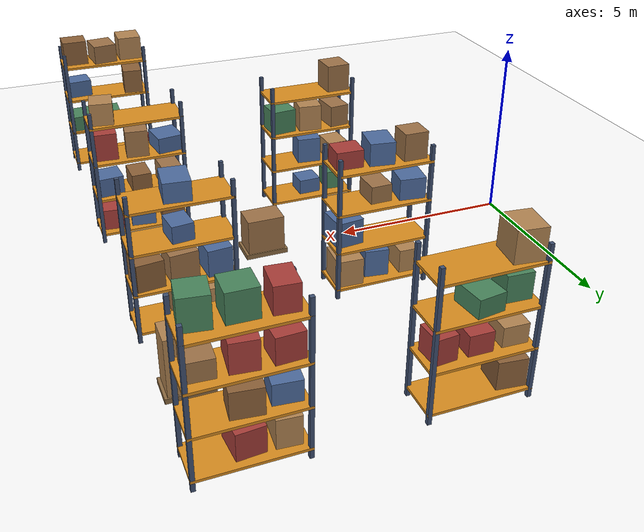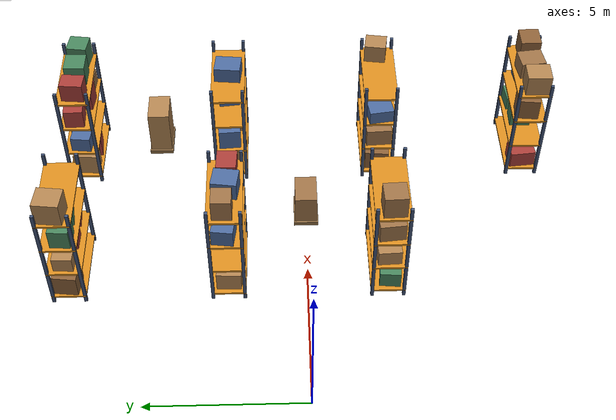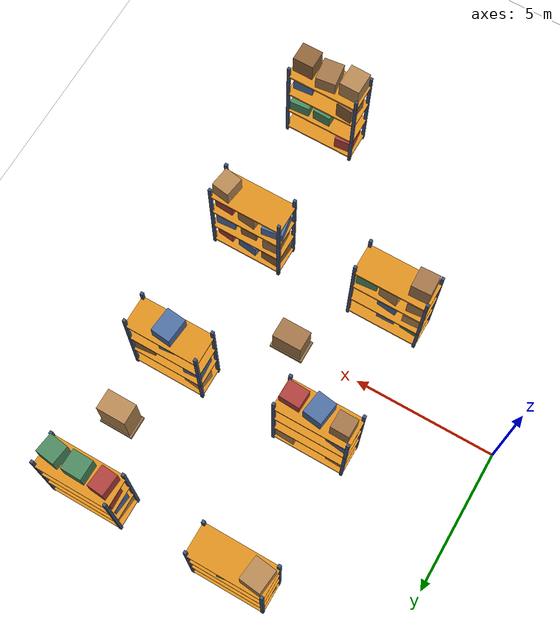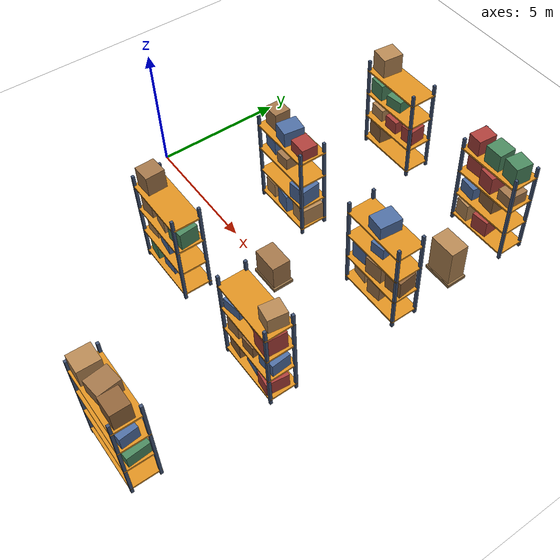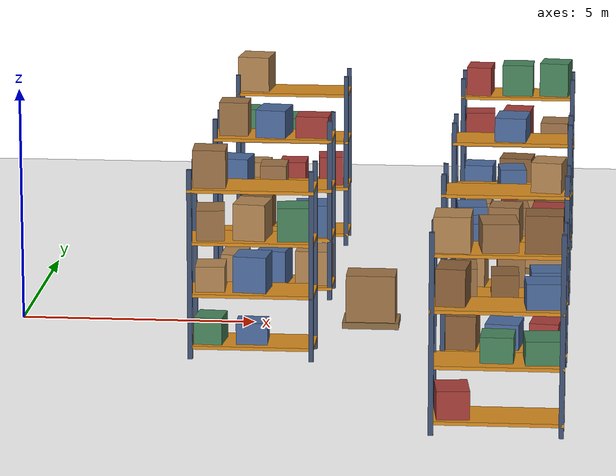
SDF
<sdf version="1.9">
 <world name="warehouse">
  <model name="ground_plane">
   <static>true</static>
   <link name="link">
    <collision name="collision">
     <geometry><plane><normal>0 0 1</normal><size>200 200</size></plane></geometry>
     <surface><friction><ode><mu>1.0</mu><mu2>1.0</mu2></ode></friction></surface>
    </collision>
    <visual name="visual">
     <geometry><plane><normal>0 0 1</normal><size>200 200</size></plane></geometry>
     <material>
      <ambient>0.5 0.5 0.5 1</ambient>
      <diffuse>1 1 1 1</diffuse>
      <pbr>
       <metal>
        <albedo_map>model://surfaces/materials/textures/floor.png</albedo_map>
        <metalness>0</metalness>
        <roughness>0.9</roughness>
       </metal>
      </pbr>
     </material>
    </visual>
   </link>
  </model>
  <model name="rack_0_4">
   <static>true</static>
   <pose>10.4 -7.5 0 0 0 0</pose>
   <link name="link">
    <visual name="upright_0_v">
     <pose>-1.25 -0.5 2 0 0 0</pose>
     <geometry><box><size>0.1 0.1 4</size></box></geometry>
     <material><ambient>0.125 0.16 0.225 1</ambient><diffuse>0.25 0.32 0.45 1</diffuse></material>
    </visual>
    <collision name="upright_0_c">
     <pose>-1.25 -0.5 2 0 0 0</pose>
     <geometry><box><size>0.1 0.1 4</size></box></geometry>
    </collision>
    <visual name="upright_1_v">
     <pose>-1.25 0.5 2 0 0 0</pose>
     <geometry><box><size>0.1 0.1 4</size></box></geometry>
     <material><ambient>0.125 0.16 0.225 1</ambient><diffuse>0.25 0.32 0.45 1</diffuse></material>
    </visual>
    <collision name="upright_1_c">
     <pose>-1.25 0.5 2 0 0 0</pose>
     <geometry><box><size>0.1 0.1 4</size></box></geometry>
    </collision>
    <visual name="upright_2_v">
     <pose>1.25 -0.5 2 0 0 0</pose>
     <geometry><box><size>0.1 0.1 4</size></box></geometry>
     <material><ambient>0.125 0.16 0.225 1</ambient><diffuse>0.25 0.32 0.45 1</diffuse></material>
    </visual>
    <collision name="upright_2_c">
     <pose>1.25 -0.5 2 0 0 0</pose>
     <geometry><box><size>0.1 0.1 4</size></box></geometry>
    </collision>
    <visual name="upright_3_v">
     <pose>1.25 0.5 2 0 0 0</pose>
     <geometry><box><size>0.1 0.1 4</size></box></geometry>
     <material><ambient>0.125 0.16 0.225 1</ambient><diffuse>0.25 0.32 0.45 1</diffuse></material>
    </visual>
    <collision name="upright_3_c">
     <pose>1.25 0.5 2 0 0 0</pose>
     <geometry><box><size>0.1 0.1 4</size></box></geometry>
    </collision>
    <visual name="deck_0_v">
     <pose>0 0 0.25 0 0 0</pose>
     <geometry><box><size>2.6 1.1 0.07</size></box></geometry>
     <material><ambient>0.425 0.275 0.06 1</ambient><diffuse>0.85 0.55 0.12 1</diffuse></material>
    </visual>
    <collision name="deck_0_c">
     <pose>0 0 0.25 0 0 0</pose>
     <geometry><box><size>2.6 1.1 0.07</size></box></geometry>
    </collision>
    <visual name="cargo_0_0_v">
     <pose>-0.8667 -0.003469 0.5691 0 0 0.1021</pose>
     <geometry><box><size>0.644 0.8463 0.5682</size></box></geometry>
     <material><ambient>0.33 0.12 0.11 1</ambient><diffuse>0.66 0.24 0.22 1</diffuse></material>
    </visual>
    <collision name="cargo_0_0_c">
     <pose>-0.8667 -0.003469 0.5691 0 0 0.1021</pose>
     <geometry><box><size>0.644 0.8463 0.5682</size></box></geometry>
    </collision>
    <visual name="deck_1_v">
     <pose>0 0 1.35 0 0 0</pose>
     <geometry><box><size>2.6 1.1 0.07</size></box></geometry>
     <material><ambient>0.425 0.275 0.06 1</ambient><diffuse>0.85 0.55 0.12 1</diffuse></material>
    </visual>
    <collision name="deck_1_c">
     <pose>0 0 1.35 0 0 0</pose>
     <geometry><box><size>2.6 1.1 0.07</size></box></geometry>
    </collision>
    <visual name="cargo_1_2_v">
     <pose>0.8667 0.03212 1.625 0 0 0.07504</pose>
     <geometry><box><size>0.7099 0.8274 0.4797</size></box></geometry>
     <material><ambient>0.14 0.26 0.18 1</ambient><diffuse>0.28 0.52 0.36 1</diffuse></material>
    </visual>
    <collision name="cargo_1_2_c">
     <pose>0.8667 0.03212 1.625 0 0 0.07504</pose>
     <geometry><box><size>0.7099 0.8274 0.4797</size></box></geometry>
    </collision>
    <visual name="cargo_1_1_v">
     <pose>0 0.05783 1.641 0 0 -0.03125</pose>
     <geometry><box><size>0.6456 0.6831 0.5125</size></box></geometry>
     <material><ambient>0.14 0.26 0.18 1</ambient><diffuse>0.28 0.52 0.36 1</diffuse></material>
    </visual>
    <collision name="cargo_1_1_c">
     <pose>0 0.05783 1.641 0 0 -0.03125</pose>
     <geometry><box><size>0.6456 0.6831 0.5125</size></box></geometry>
    </collision>
    <visual name="deck_2_v">
     <pose>0 0 2.45 0 0 0</pose>
     <geometry><box><size>2.6 1.1 0.07</size></box></geometry>
     <material><ambient>0.425 0.275 0.06 1</ambient><diffuse>0.85 0.55 0.12 1</diffuse></material>
    </visual>
    <collision name="deck_2_c">
     <pose>0 0 2.45 0 0 0</pose>
     <geometry><box><size>2.6 1.1 0.07</size></box></geometry>
    </collision>
    <visual name="cargo_2_2_v">
     <pose>0.8667 -0.07459 2.74 0 0 0.09195</pose>
     <geometry><box><size>0.695 0.6378 0.5095</size></box></geometry>
     <material><ambient>0.15 0.21 0.31 1</ambient><diffuse>0.3 0.42 0.62 1</diffuse></material>
    </visual>
    <collision name="cargo_2_2_c">
     <pose>0.8667 -0.07459 2.74 0 0 0.09195</pose>
     <geometry><box><size>0.695 0.6378 0.5095</size></box></geometry>
    </collision>
    <visual name="cargo_2_0_v">
     <pose>-0.8667 0.09606 2.855 0 0 -0.1032</pose>
     <geometry><box><size>0.5792 0.7643 0.7393</size></box></geometry>
     <material><ambient>0.275 0.19 0.11 1</ambient><diffuse>0.55 0.38 0.22 1</diffuse></material>
    </visual>
    <collision name="cargo_2_0_c">
     <pose>-0.8667 0.09606 2.855 0 0 -0.1032</pose>
     <geometry><box><size>0.5792 0.7643 0.7393</size></box></geometry>
    </collision>
    <visual name="deck_3_v">
     <pose>0 0 3.55 0 0 0</pose>
     <geometry><box><size>2.6 1.1 0.07</size></box></geometry>
     <material><ambient>0.425 0.275 0.06 1</ambient><diffuse>0.85 0.55 0.12 1</diffuse></material>
    </visual>
    <collision name="deck_3_c">
     <pose>0 0 3.55 0 0 0</pose>
     <geometry><box><size>2.6 1.1 0.07</size></box></geometry>
    </collision>
    <visual name="cargo_3_0_v">
     <pose>-0.8667 -0.07945 3.937 0 0 -0.01986</pose>
     <geometry><box><size>0.7099 0.7874 0.7042</size></box></geometry>
     <material><ambient>0.35 0.26 0.16 1</ambient><diffuse>0.7 0.52 0.32 1</diffuse></material>
    </visual>
    <collision name="cargo_3_0_c">
     <pose>-0.8667 -0.07945 3.937 0 0 -0.01986</pose>
     <geometry><box><size>0.7099 0.7874 0.7042</size></box></geometry>
    </collision>
    <visual name="cargo_3_2_v">
     <pose>0.8667 -0.05779 3.955 0 0 0.0003486</pose>
     <geometry><box><size>0.7243 0.663 0.7392</size></box></geometry>
     <material><ambient>0.275 0.19 0.11 1</ambient><diffuse>0.55 0.38 0.22 1</diffuse></material>
    </visual>
    <collision name="cargo_3_2_c">
     <pose>0.8667 -0.05779 3.955 0 0 0.0003486</pose>
     <geometry><box><size>0.7243 0.663 0.7392</size></box></geometry>
    </collision>
    <visual name="cargo_3_1_v">
     <pose>0 0.008871 3.867 0 0 0.123</pose>
     <geometry><box><size>0.7027 0.8085 0.5641</size></box></geometry>
     <material><ambient>0.31 0.225 0.14 1</ambient><diffuse>0.62 0.45 0.28 1</diffuse></material>
    </visual>
    <collision name="cargo_3_1_c">
     <pose>0 0.008871 3.867 0 0 0.123</pose>
     <geometry><box><size>0.7027 0.8085 0.5641</size></box></geometry>
    </collision>
   </link>
  </model>
  <model name="rack_1_3">
   <static>true</static>
   <pose>5.2 -2.5 0 0 0 0</pose>
   <link name="link">
    <visual name="upright_0_v">
     <pose>-1.25 -0.5 2 0 0 0</pose>
     <geometry><box><size>0.1 0.1 4</size></box></geometry>
     <material><ambient>0.125 0.16 0.225 1</ambient><diffuse>0.25 0.32 0.45 1</diffuse></material>
    </visual>
    <collision name="upright_0_c">
     <pose>-1.25 -0.5 2 0 0 0</pose>
     <geometry><box><size>0.1 0.1 4</size></box></geometry>
    </collision>
    <visual name="upright_1_v">
     <pose>-1.25 0.5 2 0 0 0</pose>
     <geometry><box><size>0.1 0.1 4</size></box></geometry>
     <material><ambient>0.125 0.16 0.225 1</ambient><diffuse>0.25 0.32 0.45 1</diffuse></material>
    </visual>
    <collision name="upright_1_c">
     <pose>-1.25 0.5 2 0 0 0</pose>
     <geometry><box><size>0.1 0.1 4</size></box></geometry>
    </collision>
    <visual name="upright_2_v">
     <pose>1.25 -0.5 2 0 0 0</pose>
     <geometry><box><size>0.1 0.1 4</size></box></geometry>
     <material><ambient>0.125 0.16 0.225 1</ambient><diffuse>0.25 0.32 0.45 1</diffuse></material>
    </visual>
    <collision name="upright_2_c">
     <pose>1.25 -0.5 2 0 0 0</pose>
     <geometry><box><size>0.1 0.1 4</size></box></geometry>
    </collision>
    <visual name="upright_3_v">
     <pose>1.25 0.5 2 0 0 0</pose>
     <geometry><box><size>0.1 0.1 4</size></box></geometry>
     <material><ambient>0.125 0.16 0.225 1</ambient><diffuse>0.25 0.32 0.45 1</diffuse></material>
    </visual>
    <collision name="upright_3_c">
     <pose>1.25 0.5 2 0 0 0</pose>
     <geometry><box><size>0.1 0.1 4</size></box></geometry>
    </collision>
    <visual name="deck_0_v">
     <pose>0 0 0.25 0 0 0</pose>
     <geometry><box><size>2.6 1.1 0.07</size></box></geometry>
     <material><ambient>0.425 0.275 0.06 1</ambient><diffuse>0.85 0.55 0.12 1</diffuse></material>
    </visual>
    <collision name="deck_0_c">
     <pose>0 0 0.25 0 0 0</pose>
     <geometry><box><size>2.6 1.1 0.07</size></box></geometry>
    </collision>
    <visual name="cargo_0_0_v">
     <pose>-0.8667 -0.08322 0.5687 0 0 -0.08971</pose>
     <geometry><box><size>0.5866 0.6697 0.5674</size></box></geometry>
     <material><ambient>0.14 0.26 0.18 1</ambient><diffuse>0.28 0.52 0.36 1</diffuse></material>
    </visual>
    <collision name="cargo_0_0_c">
     <pose>-0.8667 -0.08322 0.5687 0 0 -0.08971</pose>
     <geometry><box><size>0.5866 0.6697 0.5674</size></box></geometry>
    </collision>
    <visual name="cargo_0_1_v">
     <pose>0 -0.04717 0.5109 0 0 0.02604</pose>
     <geometry><box><size>0.6509 0.6224 0.4517</size></box></geometry>
     <material><ambient>0.15 0.21 0.31 1</ambient><diffuse>0.3 0.42 0.62 1</diffuse></material>
    </visual>
    <collision name="cargo_0_1_c">
     <pose>0 -0.04717 0.5109 0 0 0.02604</pose>
     <geometry><box><size>0.6509 0.6224 0.4517</size></box></geometry>
    </collision>
    <visual name="deck_1_v">
     <pose>0 0 1.35 0 0 0</pose>
     <geometry><box><size>2.6 1.1 0.07</size></box></geometry>
     <material><ambient>0.425 0.275 0.06 1</ambient><diffuse>0.85 0.55 0.12 1</diffuse></material>
    </visual>
    <collision name="deck_1_c">
     <pose>0 0 1.35 0 0 0</pose>
     <geometry><box><size>2.6 1.1 0.07</size></box></geometry>
    </collision>
    <visual name="cargo_1_0_v">
     <pose>-0.8667 0.01712 1.651 0 0 0.04726</pose>
     <geometry><box><size>0.6108 0.7323 0.5315</size></box></geometry>
     <material><ambient>0.35 0.26 0.16 1</ambient><diffuse>0.7 0.52 0.32 1</diffuse></material>
    </visual>
    <collision name="cargo_1_0_c">
     <pose>-0.8667 0.01712 1.651 0 0 0.04726</pose>
     <geometry><box><size>0.6108 0.7323 0.5315</size></box></geometry>
    </collision>
    <visual name="cargo_1_1_v">
     <pose>0 -0.0221 1.764 0 0 -0.1052</pose>
     <geometry><box><size>0.6932 0.6815 0.7577</size></box></geometry>
     <material><ambient>0.15 0.21 0.31 1</ambient><diffuse>0.3 0.42 0.62 1</diffuse></material>
    </visual>
    <collision name="cargo_1_1_c">
     <pose>0 -0.0221 1.764 0 0 -0.1052</pose>
     <geometry><box><size>0.6932 0.6815 0.7577</size></box></geometry>
    </collision>
    <visual name="deck_2_v">
     <pose>0 0 2.45 0 0 0</pose>
     <geometry><box><size>2.6 1.1 0.07</size></box></geometry>
     <material><ambient>0.425 0.275 0.06 1</ambient><diffuse>0.85 0.55 0.12 1</diffuse></material>
    </visual>
    <collision name="deck_2_c">
     <pose>0 0 2.45 0 0 0</pose>
     <geometry><box><size>2.6 1.1 0.07</size></box></geometry>
    </collision>
    <visual name="cargo_2_2_v">
     <pose>0.8667 0.002596 2.835 0 0 0.09367</pose>
     <geometry><box><size>0.715 0.7073 0.7003</size></box></geometry>
     <material><ambient>0.14 0.26 0.18 1</ambient><diffuse>0.28 0.52 0.36 1</diffuse></material>
    </visual>
    <collision name="cargo_2_2_c">
     <pose>0.8667 0.002596 2.835 0 0 0.09367</pose>
     <geometry><box><size>0.715 0.7073 0.7003</size></box></geometry>
    </collision>
    <visual name="cargo_2_0_v">
     <pose>-0.8667 0.0008742 2.802 0 0 0.09792</pose>
     <geometry><box><size>0.5779 0.8087 0.6333</size></box></geometry>
     <material><ambient>0.31 0.225 0.14 1</ambient><diffuse>0.62 0.45 0.28 1</diffuse></material>
    </visual>
    <collision name="cargo_2_0_c">
     <pose>-0.8667 0.0008742 2.802 0 0 0.09792</pose>
     <geometry><box><size>0.5779 0.8087 0.6333</size></box></geometry>
    </collision>
    <visual name="cargo_2_1_v">
     <pose>0 0.03658 2.866 0 0 -0.1245</pose>
     <geometry><box><size>0.6668 0.7733 0.7625</size></box></geometry>
     <material><ambient>0.35 0.26 0.16 1</ambient><diffuse>0.7 0.52 0.32 1</diffuse></material>
    </visual>
    <collision name="cargo_2_1_c">
     <pose>0 0.03658 2.866 0 0 -0.1245</pose>
     <geometry><box><size>0.6668 0.7733 0.7625</size></box></geometry>
    </collision>
    <visual name="deck_3_v">
     <pose>0 0 3.55 0 0 0</pose>
     <geometry><box><size>2.6 1.1 0.07</size></box></geometry>
     <material><ambient>0.425 0.275 0.06 1</ambient><diffuse>0.85 0.55 0.12 1</diffuse></material>
    </visual>
    <collision name="deck_3_c">
     <pose>0 0 3.55 0 0 0</pose>
     <geometry><box><size>2.6 1.1 0.07</size></box></geometry>
    </collision>
    <visual name="cargo_3_0_v">
     <pose>-0.8667 -0.02468 3.978 0 0 0.03833</pose>
     <geometry><box><size>0.6774 0.7128 0.7858</size></box></geometry>
     <material><ambient>0.31 0.225 0.14 1</ambient><diffuse>0.62 0.45 0.28 1</diffuse></material>
    </visual>
    <collision name="cargo_3_0_c">
     <pose>-0.8667 -0.02468 3.978 0 0 0.03833</pose>
     <geometry><box><size>0.6774 0.7128 0.7858</size></box></geometry>
    </collision>
   </link>
  </model>
  <model name="rack_1_4">
   <static>true</static>
   <pose>10.4 -2.5 0 0 0 0</pose>
   <link name="link">
    <visual name="upright_0_v">
     <pose>-1.25 -0.5 2 0 0 0</pose>
     <geometry><box><size>0.1 0.1 4</size></box></geometry>
     <material><ambient>0.125 0.16 0.225 1</ambient><diffuse>0.25 0.32 0.45 1</diffuse></material>
    </visual>
    <collision name="upright_0_c">
     <pose>-1.25 -0.5 2 0 0 0</pose>
     <geometry><box><size>0.1 0.1 4</size></box></geometry>
    </collision>
    <visual name="upright_1_v">
     <pose>-1.25 0.5 2 0 0 0</pose>
     <geometry><box><size>0.1 0.1 4</size></box></geometry>
     <material><ambient>0.125 0.16 0.225 1</ambient><diffuse>0.25 0.32 0.45 1</diffuse></material>
    </visual>
    <collision name="upright_1_c">
     <pose>-1.25 0.5 2 0 0 0</pose>
     <geometry><box><size>0.1 0.1 4</size></box></geometry>
    </collision>
    <visual name="upright_2_v">
     <pose>1.25 -0.5 2 0 0 0</pose>
     <geometry><box><size>0.1 0.1 4</size></box></geometry>
     <material><ambient>0.125 0.16 0.225 1</ambient><diffuse>0.25 0.32 0.45 1</diffuse></material>
    </visual>
    <collision name="upright_2_c">
     <pose>1.25 -0.5 2 0 0 0</pose>
     <geometry><box><size>0.1 0.1 4</size></box></geometry>
    </collision>
    <visual name="upright_3_v">
     <pose>1.25 0.5 2 0 0 0</pose>
     <geometry><box><size>0.1 0.1 4</size></box></geometry>
     <material><ambient>0.125 0.16 0.225 1</ambient><diffuse>0.25 0.32 0.45 1</diffuse></material>
    </visual>
    <collision name="upright_3_c">
     <pose>1.25 0.5 2 0 0 0</pose>
     <geometry><box><size>0.1 0.1 4</size></box></geometry>
    </collision>
    <visual name="deck_0_v">
     <pose>0 0 0.25 0 0 0</pose>
     <geometry><box><size>2.6 1.1 0.07</size></box></geometry>
     <material><ambient>0.425 0.275 0.06 1</ambient><diffuse>0.85 0.55 0.12 1</diffuse></material>
    </visual>
    <collision name="deck_0_c">
     <pose>0 0 0.25 0 0 0</pose>
     <geometry><box><size>2.6 1.1 0.07</size></box></geometry>
    </collision>
    <visual name="cargo_0_2_v">
     <pose>0.8667 -0.08598 0.59 0 0 -0.1224</pose>
     <geometry><box><size>0.6028 0.8331 0.6099</size></box></geometry>
     <material><ambient>0.33 0.12 0.11 1</ambient><diffuse>0.66 0.24 0.22 1</diffuse></material>
    </visual>
    <collision name="cargo_0_2_c">
     <pose>0.8667 -0.08598 0.59 0 0 -0.1224</pose>
     <geometry><box><size>0.6028 0.8331 0.6099</size></box></geometry>
    </collision>
    <visual name="cargo_0_0_v">
     <pose>-0.8667 -0.005228 0.6405 0 0 -0.07956</pose>
     <geometry><box><size>0.6552 0.8023 0.711</size></box></geometry>
     <material><ambient>0.275 0.19 0.11 1</ambient><diffuse>0.55 0.38 0.22 1</diffuse></material>
    </visual>
    <collision name="cargo_0_0_c">
     <pose>-0.8667 -0.005228 0.6405 0 0 -0.07956</pose>
     <geometry><box><size>0.6552 0.8023 0.711</size></box></geometry>
    </collision>
    <visual name="cargo_0_1_v">
     <pose>0 0.02999 0.5504 0 0 -0.127</pose>
     <geometry><box><size>0.7013 0.7151 0.5308</size></box></geometry>
     <material><ambient>0.15 0.21 0.31 1</ambient><diffuse>0.3 0.42 0.62 1</diffuse></material>
    </visual>
    <collision name="cargo_0_1_c">
     <pose>0 0.02999 0.5504 0 0 -0.127</pose>
     <geometry><box><size>0.7013 0.7151 0.5308</size></box></geometry>
    </collision>
    <visual name="deck_1_v">
     <pose>0 0 1.35 0 0 0</pose>
     <geometry><box><size>2.6 1.1 0.07</size></box></geometry>
     <material><ambient>0.425 0.275 0.06 1</ambient><diffuse>0.85 0.55 0.12 1</diffuse></material>
    </visual>
    <collision name="deck_1_c">
     <pose>0 0 1.35 0 0 0</pose>
     <geometry><box><size>2.6 1.1 0.07</size></box></geometry>
    </collision>
    <visual name="cargo_1_1_v">
     <pose>0 -0.04921 1.636 0 0 0.03635</pose>
     <geometry><box><size>0.5655 0.7858 0.5016</size></box></geometry>
     <material><ambient>0.275 0.19 0.11 1</ambient><diffuse>0.55 0.38 0.22 1</diffuse></material>
    </visual>
    <collision name="cargo_1_1_c">
     <pose>0 -0.04921 1.636 0 0 0.03635</pose>
     <geometry><box><size>0.5655 0.7858 0.5016</size></box></geometry>
    </collision>
    <visual name="cargo_1_0_v">
     <pose>-0.8667 -0.00284 1.694 0 0 0.05766</pose>
     <geometry><box><size>0.5767 0.8431 0.6188</size></box></geometry>
     <material><ambient>0.31 0.225 0.14 1</ambient><diffuse>0.62 0.45 0.28 1</diffuse></material>
    </visual>
    <collision name="cargo_1_0_c">
     <pose>-0.8667 -0.00284 1.694 0 0 0.05766</pose>
     <geometry><box><size>0.5767 0.8431 0.6188</size></box></geometry>
    </collision>
    <visual name="cargo_1_2_v">
     <pose>0.8667 0.003307 1.661 0 0 0.08015</pose>
     <geometry><box><size>0.6851 0.7162 0.5518</size></box></geometry>
     <material><ambient>0.15 0.21 0.31 1</ambient><diffuse>0.3 0.42 0.62 1</diffuse></material>
    </visual>
    <collision name="cargo_1_2_c">
     <pose>0.8667 0.003307 1.661 0 0 0.08015</pose>
     <geometry><box><size>0.6851 0.7162 0.5518</size></box></geometry>
    </collision>
    <visual name="deck_2_v">
     <pose>0 0 2.45 0 0 0</pose>
     <geometry><box><size>2.6 1.1 0.07</size></box></geometry>
     <material><ambient>0.425 0.275 0.06 1</ambient><diffuse>0.85 0.55 0.12 1</diffuse></material>
    </visual>
    <collision name="deck_2_c">
     <pose>0 0 2.45 0 0 0</pose>
     <geometry><box><size>2.6 1.1 0.07</size></box></geometry>
    </collision>
    <visual name="cargo_2_0_v">
     <pose>-0.8667 -0.008206 2.713 0 0 0.1482</pose>
     <geometry><box><size>0.7373 0.805 0.4561</size></box></geometry>
     <material><ambient>0.15 0.21 0.31 1</ambient><diffuse>0.3 0.42 0.62 1</diffuse></material>
    </visual>
    <collision name="cargo_2_0_c">
     <pose>-0.8667 -0.008206 2.713 0 0 0.1482</pose>
     <geometry><box><size>0.7373 0.805 0.4561</size></box></geometry>
    </collision>
    <visual name="cargo_2_1_v">
     <pose>0 0.08611 2.87 0 0 -0.1075</pose>
     <geometry><box><size>0.6274 0.6187 0.7708</size></box></geometry>
     <material><ambient>0.31 0.225 0.14 1</ambient><diffuse>0.62 0.45 0.28 1</diffuse></material>
    </visual>
    <collision name="cargo_2_1_c">
     <pose>0 0.08611 2.87 0 0 -0.1075</pose>
     <geometry><box><size>0.6274 0.6187 0.7708</size></box></geometry>
    </collision>
    <visual name="cargo_2_2_v">
     <pose>0.8667 -0.07348 2.877 0 0 -0.06613</pose>
     <geometry><box><size>0.6548 0.8051 0.7835</size></box></geometry>
     <material><ambient>0.33 0.12 0.11 1</ambient><diffuse>0.66 0.24 0.22 1</diffuse></material>
    </visual>
    <collision name="cargo_2_2_c">
     <pose>0.8667 -0.07348 2.877 0 0 -0.06613</pose>
     <geometry><box><size>0.6548 0.8051 0.7835</size></box></geometry>
    </collision>
    <visual name="deck_3_v">
     <pose>0 0 3.55 0 0 0</pose>
     <geometry><box><size>2.6 1.1 0.07</size></box></geometry>
     <material><ambient>0.425 0.275 0.06 1</ambient><diffuse>0.85 0.55 0.12 1</diffuse></material>
    </visual>
    <collision name="deck_3_c">
     <pose>0 0 3.55 0 0 0</pose>
     <geometry><box><size>2.6 1.1 0.07</size></box></geometry>
    </collision>
    <visual name="cargo_3_2_v">
     <pose>0.8667 0.07523 3.897 0 0 -0.1489</pose>
     <geometry><box><size>0.623 0.6985 0.6243</size></box></geometry>
     <material><ambient>0.35 0.26 0.16 1</ambient><diffuse>0.7 0.52 0.32 1</diffuse></material>
    </visual>
    <collision name="cargo_3_2_c">
     <pose>0.8667 0.07523 3.897 0 0 -0.1489</pose>
     <geometry><box><size>0.623 0.6985 0.6243</size></box></geometry>
    </collision>
   </link>
  </model>
  <model name="rack_2_3">
   <static>true</static>
   <pose>5.2 2.5 0 0 0 0</pose>
   <link name="link">
    <visual name="upright_0_v">
     <pose>-1.25 -0.5 2 0 0 0</pose>
     <geometry><box><size>0.1 0.1 4</size></box></geometry>
     <material><ambient>0.125 0.16 0.225 1</ambient><diffuse>0.25 0.32 0.45 1</diffuse></material>
    </visual>
    <collision name="upright_0_c">
     <pose>-1.25 -0.5 2 0 0 0</pose>
     <geometry><box><size>0.1 0.1 4</size></box></geometry>
    </collision>
    <visual name="upright_1_v">
     <pose>-1.25 0.5 2 0 0 0</pose>
     <geometry><box><size>0.1 0.1 4</size></box></geometry>
     <material><ambient>0.125 0.16 0.225 1</ambient><diffuse>0.25 0.32 0.45 1</diffuse></material>
    </visual>
    <collision name="upright_1_c">
     <pose>-1.25 0.5 2 0 0 0</pose>
     <geometry><box><size>0.1 0.1 4</size></box></geometry>
    </collision>
    <visual name="upright_2_v">
     <pose>1.25 -0.5 2 0 0 0</pose>
     <geometry><box><size>0.1 0.1 4</size></box></geometry>
     <material><ambient>0.125 0.16 0.225 1</ambient><diffuse>0.25 0.32 0.45 1</diffuse></material>
    </visual>
    <collision name="upright_2_c">
     <pose>1.25 -0.5 2 0 0 0</pose>
     <geometry><box><size>0.1 0.1 4</size></box></geometry>
    </collision>
    <visual name="upright_3_v">
     <pose>1.25 0.5 2 0 0 0</pose>
     <geometry><box><size>0.1 0.1 4</size></box></geometry>
     <material><ambient>0.125 0.16 0.225 1</ambient><diffuse>0.25 0.32 0.45 1</diffuse></material>
    </visual>
    <collision name="upright_3_c">
     <pose>1.25 0.5 2 0 0 0</pose>
     <geometry><box><size>0.1 0.1 4</size></box></geometry>
    </collision>
    <visual name="deck_0_v">
     <pose>0 0 0.25 0 0 0</pose>
     <geometry><box><size>2.6 1.1 0.07</size></box></geometry>
     <material><ambient>0.425 0.275 0.06 1</ambient><diffuse>0.85 0.55 0.12 1</diffuse></material>
    </visual>
    <collision name="deck_0_c">
     <pose>0 0 0.25 0 0 0</pose>
     <geometry><box><size>2.6 1.1 0.07</size></box></geometry>
    </collision>
    <visual name="cargo_0_1_v">
     <pose>0 -0.08872 0.6693 0 0 -0.1337</pose>
     <geometry><box><size>0.647 0.7487 0.7686</size></box></geometry>
     <material><ambient>0.15 0.21 0.31 1</ambient><diffuse>0.3 0.42 0.62 1</diffuse></material>
    </visual>
    <collision name="cargo_0_1_c">
     <pose>0 -0.08872 0.6693 0 0 -0.1337</pose>
     <geometry><box><size>0.647 0.7487 0.7686</size></box></geometry>
    </collision>
    <visual name="cargo_0_0_v">
     <pose>-0.8667 -0.01692 0.6143 0 0 -0.032</pose>
     <geometry><box><size>0.5547 0.7775 0.6586</size></box></geometry>
     <material><ambient>0.35 0.26 0.16 1</ambient><diffuse>0.7 0.52 0.32 1</diffuse></material>
    </visual>
    <collision name="cargo_0_0_c">
     <pose>-0.8667 -0.01692 0.6143 0 0 -0.032</pose>
     <geometry><box><size>0.5547 0.7775 0.6586</size></box></geometry>
    </collision>
    <visual name="cargo_0_2_v">
     <pose>0.8667 0.04654 0.6646 0 0 -0.05123</pose>
     <geometry><box><size>0.7296 0.8494 0.7593</size></box></geometry>
     <material><ambient>0.35 0.26 0.16 1</ambient><diffuse>0.7 0.52 0.32 1</diffuse></material>
    </visual>
    <collision name="cargo_0_2_c">
     <pose>0.8667 0.04654 0.6646 0 0 -0.05123</pose>
     <geometry><box><size>0.7296 0.8494 0.7593</size></box></geometry>
    </collision>
    <visual name="deck_1_v">
     <pose>0 0 1.35 0 0 0</pose>
     <geometry><box><size>2.6 1.1 0.07</size></box></geometry>
     <material><ambient>0.425 0.275 0.06 1</ambient><diffuse>0.85 0.55 0.12 1</diffuse></material>
    </visual>
    <collision name="deck_1_c">
     <pose>0 0 1.35 0 0 0</pose>
     <geometry><box><size>2.6 1.1 0.07</size></box></geometry>
    </collision>
    <visual name="cargo_1_2_v">
     <pose>0.8667 -0.09362 1.741 0 0 0.1017</pose>
     <geometry><box><size>0.7372 0.7661 0.7112</size></box></geometry>
     <material><ambient>0.15 0.21 0.31 1</ambient><diffuse>0.3 0.42 0.62 1</diffuse></material>
    </visual>
    <collision name="cargo_1_2_c">
     <pose>0.8667 -0.09362 1.741 0 0 0.1017</pose>
     <geometry><box><size>0.7372 0.7661 0.7112</size></box></geometry>
    </collision>
    <visual name="deck_2_v">
     <pose>0 0 2.45 0 0 0</pose>
     <geometry><box><size>2.6 1.1 0.07</size></box></geometry>
     <material><ambient>0.425 0.275 0.06 1</ambient><diffuse>0.85 0.55 0.12 1</diffuse></material>
    </visual>
    <collision name="deck_2_c">
     <pose>0 0 2.45 0 0 0</pose>
     <geometry><box><size>2.6 1.1 0.07</size></box></geometry>
    </collision>
    <visual name="cargo_2_1_v">
     <pose>0 -0.08385 2.724 0 0 0.01834</pose>
     <geometry><box><size>0.5718 0.705 0.4774</size></box></geometry>
     <material><ambient>0.31 0.225 0.14 1</ambient><diffuse>0.62 0.45 0.28 1</diffuse></material>
    </visual>
    <collision name="cargo_2_1_c">
     <pose>0 -0.08385 2.724 0 0 0.01834</pose>
     <geometry><box><size>0.5718 0.705 0.4774</size></box></geometry>
    </collision>
    <visual name="cargo_2_0_v">
     <pose>-0.8667 0.05375 2.777 0 0 -0.1237</pose>
     <geometry><box><size>0.7018 0.6772 0.583</size></box></geometry>
     <material><ambient>0.15 0.21 0.31 1</ambient><diffuse>0.3 0.42 0.62 1</diffuse></material>
    </visual>
    <collision name="cargo_2_0_c">
     <pose>-0.8667 0.05375 2.777 0 0 -0.1237</pose>
     <geometry><box><size>0.7018 0.6772 0.583</size></box></geometry>
    </collision>
    <visual name="deck_3_v">
     <pose>0 0 3.55 0 0 0</pose>
     <geometry><box><size>2.6 1.1 0.07</size></box></geometry>
     <material><ambient>0.425 0.275 0.06 1</ambient><diffuse>0.85 0.55 0.12 1</diffuse></material>
    </visual>
    <collision name="deck_3_c">
     <pose>0 0 3.55 0 0 0</pose>
     <geometry><box><size>2.6 1.1 0.07</size></box></geometry>
    </collision>
    <visual name="cargo_3_1_v">
     <pose>0 -0.03534 3.888 0 0 -0.1409</pose>
     <geometry><box><size>0.6583 0.7843 0.6062</size></box></geometry>
     <material><ambient>0.15 0.21 0.31 1</ambient><diffuse>0.3 0.42 0.62 1</diffuse></material>
    </visual>
    <collision name="cargo_3_1_c">
     <pose>0 -0.03534 3.888 0 0 -0.1409</pose>
     <geometry><box><size>0.6583 0.7843 0.6062</size></box></geometry>
    </collision>
    <visual name="cargo_3_0_v">
     <pose>-0.8667 0.05333 3.952 0 0 -0.01078</pose>
     <geometry><box><size>0.6322 0.6102 0.7341</size></box></geometry>
     <material><ambient>0.31 0.225 0.14 1</ambient><diffuse>0.62 0.45 0.28 1</diffuse></material>
    </visual>
    <collision name="cargo_3_0_c">
     <pose>-0.8667 0.05333 3.952 0 0 -0.01078</pose>
     <geometry><box><size>0.6322 0.6102 0.7341</size></box></geometry>
    </collision>
    <visual name="cargo_3_2_v">
     <pose>0.8667 -0.06101 3.821 0 0 -0.04828</pose>
     <geometry><box><size>0.7107 0.6157 0.4717</size></box></geometry>
     <material><ambient>0.33 0.12 0.11 1</ambient><diffuse>0.66 0.24 0.22 1</diffuse></material>
    </visual>
    <collision name="cargo_3_2_c">
     <pose>0.8667 -0.06101 3.821 0 0 -0.04828</pose>
     <geometry><box><size>0.7107 0.6157 0.4717</size></box></geometry>
    </collision>
   </link>
  </model>
  <model name="rack_2_4">
   <static>true</static>
   <pose>10.4 2.5 0 0 0 0</pose>
   <link name="link">
    <visual name="upright_0_v">
     <pose>-1.25 -0.5 2 0 0 0</pose>
     <geometry><box><size>0.1 0.1 4</size></box></geometry>
     <material><ambient>0.125 0.16 0.225 1</ambient><diffuse>0.25 0.32 0.45 1</diffuse></material>
    </visual>
    <collision name="upright_0_c">
     <pose>-1.25 -0.5 2 0 0 0</pose>
     <geometry><box><size>0.1 0.1 4</size></box></geometry>
    </collision>
    <visual name="upright_1_v">
     <pose>-1.25 0.5 2 0 0 0</pose>
     <geometry><box><size>0.1 0.1 4</size></box></geometry>
     <material><ambient>0.125 0.16 0.225 1</ambient><diffuse>0.25 0.32 0.45 1</diffuse></material>
    </visual>
    <collision name="upright_1_c">
     <pose>-1.25 0.5 2 0 0 0</pose>
     <geometry><box><size>0.1 0.1 4</size></box></geometry>
    </collision>
    <visual name="upright_2_v">
     <pose>1.25 -0.5 2 0 0 0</pose>
     <geometry><box><size>0.1 0.1 4</size></box></geometry>
     <material><ambient>0.125 0.16 0.225 1</ambient><diffuse>0.25 0.32 0.45 1</diffuse></material>
    </visual>
    <collision name="upright_2_c">
     <pose>1.25 -0.5 2 0 0 0</pose>
     <geometry><box><size>0.1 0.1 4</size></box></geometry>
    </collision>
    <visual name="upright_3_v">
     <pose>1.25 0.5 2 0 0 0</pose>
     <geometry><box><size>0.1 0.1 4</size></box></geometry>
     <material><ambient>0.125 0.16 0.225 1</ambient><diffuse>0.25 0.32 0.45 1</diffuse></material>
    </visual>
    <collision name="upright_3_c">
     <pose>1.25 0.5 2 0 0 0</pose>
     <geometry><box><size>0.1 0.1 4</size></box></geometry>
    </collision>
    <visual name="deck_0_v">
     <pose>0 0 0.25 0 0 0</pose>
     <geometry><box><size>2.6 1.1 0.07</size></box></geometry>
     <material><ambient>0.425 0.275 0.06 1</ambient><diffuse>0.85 0.55 0.12 1</diffuse></material>
    </visual>
    <collision name="deck_0_c">
     <pose>0 0 0.25 0 0 0</pose>
     <geometry><box><size>2.6 1.1 0.07</size></box></geometry>
    </collision>
    <visual name="cargo_0_1_v">
     <pose>0 -0.0367 0.6354 0 0 0.06647</pose>
     <geometry><box><size>0.6024 0.6689 0.7008</size></box></geometry>
     <material><ambient>0.31 0.225 0.14 1</ambient><diffuse>0.62 0.45 0.28 1</diffuse></material>
    </visual>
    <collision name="cargo_0_1_c">
     <pose>0 -0.0367 0.6354 0 0 0.06647</pose>
     <geometry><box><size>0.6024 0.6689 0.7008</size></box></geometry>
    </collision>
    <visual name="cargo_0_0_v">
     <pose>-0.8667 0.0893 0.651 0 0 -0.1178</pose>
     <geometry><box><size>0.6691 0.6163 0.732</size></box></geometry>
     <material><ambient>0.35 0.26 0.16 1</ambient><diffuse>0.7 0.52 0.32 1</diffuse></material>
    </visual>
    <collision name="cargo_0_0_c">
     <pose>-0.8667 0.0893 0.651 0 0 -0.1178</pose>
     <geometry><box><size>0.6691 0.6163 0.732</size></box></geometry>
    </collision>
    <visual name="deck_1_v">
     <pose>0 0 1.35 0 0 0</pose>
     <geometry><box><size>2.6 1.1 0.07</size></box></geometry>
     <material><ambient>0.425 0.275 0.06 1</ambient><diffuse>0.85 0.55 0.12 1</diffuse></material>
    </visual>
    <collision name="deck_1_c">
     <pose>0 0 1.35 0 0 0</pose>
     <geometry><box><size>2.6 1.1 0.07</size></box></geometry>
    </collision>
    <visual name="cargo_1_1_v">
     <pose>0 -0.07346 1.753 0 0 0.09077</pose>
     <geometry><box><size>0.7327 0.7241 0.7352</size></box></geometry>
     <material><ambient>0.31 0.225 0.14 1</ambient><diffuse>0.62 0.45 0.28 1</diffuse></material>
    </visual>
    <collision name="cargo_1_1_c">
     <pose>0 -0.07346 1.753 0 0 0.09077</pose>
     <geometry><box><size>0.7327 0.7241 0.7352</size></box></geometry>
    </collision>
    <visual name="cargo_1_2_v">
     <pose>0.8667 0.05456 1.754 0 0 0.1084</pose>
     <geometry><box><size>0.6977 0.7518 0.738</size></box></geometry>
     <material><ambient>0.275 0.19 0.11 1</ambient><diffuse>0.55 0.38 0.22 1</diffuse></material>
    </visual>
    <collision name="cargo_1_2_c">
     <pose>0.8667 0.05456 1.754 0 0 0.1084</pose>
     <geometry><box><size>0.6977 0.7518 0.738</size></box></geometry>
    </collision>
    <visual name="cargo_1_0_v">
     <pose>-0.8667 0.01914 1.747 0 0 0.07587</pose>
     <geometry><box><size>0.6422 0.728 0.7243</size></box></geometry>
     <material><ambient>0.15 0.21 0.31 1</ambient><diffuse>0.3 0.42 0.62 1</diffuse></material>
    </visual>
    <collision name="cargo_1_0_c">
     <pose>-0.8667 0.01914 1.747 0 0 0.07587</pose>
     <geometry><box><size>0.6422 0.728 0.7243</size></box></geometry>
    </collision>
    <visual name="deck_2_v">
     <pose>0 0 2.45 0 0 0</pose>
     <geometry><box><size>2.6 1.1 0.07</size></box></geometry>
     <material><ambient>0.425 0.275 0.06 1</ambient><diffuse>0.85 0.55 0.12 1</diffuse></material>
    </visual>
    <collision name="deck_2_c">
     <pose>0 0 2.45 0 0 0</pose>
     <geometry><box><size>2.6 1.1 0.07</size></box></geometry>
    </collision>
    <visual name="cargo_2_1_v">
     <pose>0 0.01052 2.716 0 0 0.115</pose>
     <geometry><box><size>0.5629 0.6814 0.4619</size></box></geometry>
     <material><ambient>0.15 0.21 0.31 1</ambient><diffuse>0.3 0.42 0.62 1</diffuse></material>
    </visual>
    <collision name="cargo_2_1_c">
     <pose>0 0.01052 2.716 0 0 0.115</pose>
     <geometry><box><size>0.5629 0.6814 0.4619</size></box></geometry>
    </collision>
    <visual name="deck_3_v">
     <pose>0 0 3.55 0 0 0</pose>
     <geometry><box><size>2.6 1.1 0.07</size></box></geometry>
     <material><ambient>0.425 0.275 0.06 1</ambient><diffuse>0.85 0.55 0.12 1</diffuse></material>
    </visual>
    <collision name="deck_3_c">
     <pose>0 0 3.55 0 0 0</pose>
     <geometry><box><size>2.6 1.1 0.07</size></box></geometry>
    </collision>
    <visual name="cargo_3_1_v">
     <pose>0 -0.01579 3.846 0 0 -0.09804</pose>
     <geometry><box><size>0.6749 0.8471 0.5229</size></box></geometry>
     <material><ambient>0.15 0.21 0.31 1</ambient><diffuse>0.3 0.42 0.62 1</diffuse></material>
    </visual>
    <collision name="cargo_3_1_c">
     <pose>0 -0.01579 3.846 0 0 -0.09804</pose>
     <geometry><box><size>0.6749 0.8471 0.5229</size></box></geometry>
    </collision>
   </link>
  </model>
  <model name="rack_3_3">
   <static>true</static>
   <pose>5.2 7.5 0 0 0 0</pose>
   <link name="link">
    <visual name="upright_0_v">
     <pose>-1.25 -0.5 2 0 0 0</pose>
     <geometry><box><size>0.1 0.1 4</size></box></geometry>
     <material><ambient>0.125 0.16 0.225 1</ambient><diffuse>0.25 0.32 0.45 1</diffuse></material>
    </visual>
    <collision name="upright_0_c">
     <pose>-1.25 -0.5 2 0 0 0</pose>
     <geometry><box><size>0.1 0.1 4</size></box></geometry>
    </collision>
    <visual name="upright_1_v">
     <pose>-1.25 0.5 2 0 0 0</pose>
     <geometry><box><size>0.1 0.1 4</size></box></geometry>
     <material><ambient>0.125 0.16 0.225 1</ambient><diffuse>0.25 0.32 0.45 1</diffuse></material>
    </visual>
    <collision name="upright_1_c">
     <pose>-1.25 0.5 2 0 0 0</pose>
     <geometry><box><size>0.1 0.1 4</size></box></geometry>
    </collision>
    <visual name="upright_2_v">
     <pose>1.25 -0.5 2 0 0 0</pose>
     <geometry><box><size>0.1 0.1 4</size></box></geometry>
     <material><ambient>0.125 0.16 0.225 1</ambient><diffuse>0.25 0.32 0.45 1</diffuse></material>
    </visual>
    <collision name="upright_2_c">
     <pose>1.25 -0.5 2 0 0 0</pose>
     <geometry><box><size>0.1 0.1 4</size></box></geometry>
    </collision>
    <visual name="upright_3_v">
     <pose>1.25 0.5 2 0 0 0</pose>
     <geometry><box><size>0.1 0.1 4</size></box></geometry>
     <material><ambient>0.125 0.16 0.225 1</ambient><diffuse>0.25 0.32 0.45 1</diffuse></material>
    </visual>
    <collision name="upright_3_c">
     <pose>1.25 0.5 2 0 0 0</pose>
     <geometry><box><size>0.1 0.1 4</size></box></geometry>
    </collision>
    <visual name="deck_0_v">
     <pose>0 0 0.25 0 0 0</pose>
     <geometry><box><size>2.6 1.1 0.07</size></box></geometry>
     <material><ambient>0.425 0.275 0.06 1</ambient><diffuse>0.85 0.55 0.12 1</diffuse></material>
    </visual>
    <collision name="deck_0_c">
     <pose>0 0 0.25 0 0 0</pose>
     <geometry><box><size>2.6 1.1 0.07</size></box></geometry>
    </collision>
    <visual name="cargo_0_0_v">
     <pose>-0.8667 0.03445 0.6574 0 0 -0.1147</pose>
     <geometry><box><size>0.7268 0.767 0.7449</size></box></geometry>
     <material><ambient>0.275 0.19 0.11 1</ambient><diffuse>0.55 0.38 0.22 1</diffuse></material>
    </visual>
    <collision name="cargo_0_0_c">
     <pose>-0.8667 0.03445 0.6574 0 0 -0.1147</pose>
     <geometry><box><size>0.7268 0.767 0.7449</size></box></geometry>
    </collision>
    <visual name="deck_1_v">
     <pose>0 0 1.35 0 0 0</pose>
     <geometry><box><size>2.6 1.1 0.07</size></box></geometry>
     <material><ambient>0.425 0.275 0.06 1</ambient><diffuse>0.85 0.55 0.12 1</diffuse></material>
    </visual>
    <collision name="deck_1_c">
     <pose>0 0 1.35 0 0 0</pose>
     <geometry><box><size>2.6 1.1 0.07</size></box></geometry>
    </collision>
    <visual name="cargo_1_1_v">
     <pose>0 -0.02216 1.654 0 0 -0.01849</pose>
     <geometry><box><size>0.6116 0.6919 0.5372</size></box></geometry>
     <material><ambient>0.33 0.12 0.11 1</ambient><diffuse>0.66 0.24 0.22 1</diffuse></material>
    </visual>
    <collision name="cargo_1_1_c">
     <pose>0 -0.02216 1.654 0 0 -0.01849</pose>
     <geometry><box><size>0.6116 0.6919 0.5372</size></box></geometry>
    </collision>
    <visual name="cargo_1_2_v">
     <pose>0.8667 -0.0021 1.718 0 0 0.08399</pose>
     <geometry><box><size>0.5547 0.6588 0.6666</size></box></geometry>
     <material><ambient>0.33 0.12 0.11 1</ambient><diffuse>0.66 0.24 0.22 1</diffuse></material>
    </visual>
    <collision name="cargo_1_2_c">
     <pose>0.8667 -0.0021 1.718 0 0 0.08399</pose>
     <geometry><box><size>0.5547 0.6588 0.6666</size></box></geometry>
    </collision>
    <visual name="cargo_1_0_v">
     <pose>-0.8667 -0.005356 1.641 0 0 -0.04243</pose>
     <geometry><box><size>0.6417 0.6268 0.5128</size></box></geometry>
     <material><ambient>0.35 0.26 0.16 1</ambient><diffuse>0.7 0.52 0.32 1</diffuse></material>
    </visual>
    <collision name="cargo_1_0_c">
     <pose>-0.8667 -0.005356 1.641 0 0 -0.04243</pose>
     <geometry><box><size>0.6417 0.6268 0.5128</size></box></geometry>
    </collision>
    <visual name="deck_2_v">
     <pose>0 0 2.45 0 0 0</pose>
     <geometry><box><size>2.6 1.1 0.07</size></box></geometry>
     <material><ambient>0.425 0.275 0.06 1</ambient><diffuse>0.85 0.55 0.12 1</diffuse></material>
    </visual>
    <collision name="deck_2_c">
     <pose>0 0 2.45 0 0 0</pose>
     <geometry><box><size>2.6 1.1 0.07</size></box></geometry>
    </collision>
    <visual name="cargo_2_0_v">
     <pose>-0.8667 -0.09187 2.825 0 0 -0.05588</pose>
     <geometry><box><size>0.6509 0.6326 0.68</size></box></geometry>
     <material><ambient>0.14 0.26 0.18 1</ambient><diffuse>0.28 0.52 0.36 1</diffuse></material>
    </visual>
    <collision name="cargo_2_0_c">
     <pose>-0.8667 -0.09187 2.825 0 0 -0.05588</pose>
     <geometry><box><size>0.6509 0.6326 0.68</size></box></geometry>
    </collision>
    <visual name="cargo_2_1_v">
     <pose>0 0.05041 2.724 0 0 0.1353</pose>
     <geometry><box><size>0.6941 0.8237 0.478</size></box></geometry>
     <material><ambient>0.14 0.26 0.18 1</ambient><diffuse>0.28 0.52 0.36 1</diffuse></material>
    </visual>
    <collision name="cargo_2_1_c">
     <pose>0 0.05041 2.724 0 0 0.1353</pose>
     <geometry><box><size>0.6941 0.8237 0.478</size></box></geometry>
    </collision>
    <visual name="deck_3_v">
     <pose>0 0 3.55 0 0 0</pose>
     <geometry><box><size>2.6 1.1 0.07</size></box></geometry>
     <material><ambient>0.425 0.275 0.06 1</ambient><diffuse>0.85 0.55 0.12 1</diffuse></material>
    </visual>
    <collision name="deck_3_c">
     <pose>0 0 3.55 0 0 0</pose>
     <geometry><box><size>2.6 1.1 0.07</size></box></geometry>
    </collision>
    <visual name="cargo_3_0_v">
     <pose>-0.8667 0.04642 3.984 0 0 -0.1105</pose>
     <geometry><box><size>0.7214 0.8037 0.7986</size></box></geometry>
     <material><ambient>0.35 0.26 0.16 1</ambient><diffuse>0.7 0.52 0.32 1</diffuse></material>
    </visual>
    <collision name="cargo_3_0_c">
     <pose>-0.8667 0.04642 3.984 0 0 -0.1105</pose>
     <geometry><box><size>0.7214 0.8037 0.7986</size></box></geometry>
    </collision>
   </link>
  </model>
  <model name="rack_3_4">
   <static>true</static>
   <pose>10.4 7.5 0 0 0 0</pose>
   <link name="link">
    <visual name="upright_0_v">
     <pose>-1.25 -0.5 2 0 0 0</pose>
     <geometry><box><size>0.1 0.1 4</size></box></geometry>
     <material><ambient>0.125 0.16 0.225 1</ambient><diffuse>0.25 0.32 0.45 1</diffuse></material>
    </visual>
    <collision name="upright_0_c">
     <pose>-1.25 -0.5 2 0 0 0</pose>
     <geometry><box><size>0.1 0.1 4</size></box></geometry>
    </collision>
    <visual name="upright_1_v">
     <pose>-1.25 0.5 2 0 0 0</pose>
     <geometry><box><size>0.1 0.1 4</size></box></geometry>
     <material><ambient>0.125 0.16 0.225 1</ambient><diffuse>0.25 0.32 0.45 1</diffuse></material>
    </visual>
    <collision name="upright_1_c">
     <pose>-1.25 0.5 2 0 0 0</pose>
     <geometry><box><size>0.1 0.1 4</size></box></geometry>
    </collision>
    <visual name="upright_2_v">
     <pose>1.25 -0.5 2 0 0 0</pose>
     <geometry><box><size>0.1 0.1 4</size></box></geometry>
     <material><ambient>0.125 0.16 0.225 1</ambient><diffuse>0.25 0.32 0.45 1</diffuse></material>
    </visual>
    <collision name="upright_2_c">
     <pose>1.25 -0.5 2 0 0 0</pose>
     <geometry><box><size>0.1 0.1 4</size></box></geometry>
    </collision>
    <visual name="upright_3_v">
     <pose>1.25 0.5 2 0 0 0</pose>
     <geometry><box><size>0.1 0.1 4</size></box></geometry>
     <material><ambient>0.125 0.16 0.225 1</ambient><diffuse>0.25 0.32 0.45 1</diffuse></material>
    </visual>
    <collision name="upright_3_c">
     <pose>1.25 0.5 2 0 0 0</pose>
     <geometry><box><size>0.1 0.1 4</size></box></geometry>
    </collision>
    <visual name="deck_0_v">
     <pose>0 0 0.25 0 0 0</pose>
     <geometry><box><size>2.6 1.1 0.07</size></box></geometry>
     <material><ambient>0.425 0.275 0.06 1</ambient><diffuse>0.85 0.55 0.12 1</diffuse></material>
    </visual>
    <collision name="deck_0_c">
     <pose>0 0 0.25 0 0 0</pose>
     <geometry><box><size>2.6 1.1 0.07</size></box></geometry>
    </collision>
    <visual name="cargo_0_1_v">
     <pose>0 -0.05577 0.6362 0 0 0.07685</pose>
     <geometry><box><size>0.6872 0.8083 0.7024</size></box></geometry>
     <material><ambient>0.33 0.12 0.11 1</ambient><diffuse>0.66 0.24 0.22 1</diffuse></material>
    </visual>
    <collision name="cargo_0_1_c">
     <pose>0 -0.05577 0.6362 0 0 0.07685</pose>
     <geometry><box><size>0.6872 0.8083 0.7024</size></box></geometry>
    </collision>
    <visual name="cargo_0_0_v">
     <pose>-0.8667 -0.045 0.6669 0 0 -0.07375</pose>
     <geometry><box><size>0.5818 0.8039 0.7638</size></box></geometry>
     <material><ambient>0.35 0.26 0.16 1</ambient><diffuse>0.7 0.52 0.32 1</diffuse></material>
    </visual>
    <collision name="cargo_0_0_c">
     <pose>-0.8667 -0.045 0.6669 0 0 -0.07375</pose>
     <geometry><box><size>0.5818 0.8039 0.7638</size></box></geometry>
    </collision>
    <visual name="deck_1_v">
     <pose>0 0 1.35 0 0 0</pose>
     <geometry><box><size>2.6 1.1 0.07</size></box></geometry>
     <material><ambient>0.425 0.275 0.06 1</ambient><diffuse>0.85 0.55 0.12 1</diffuse></material>
    </visual>
    <collision name="deck_1_c">
     <pose>0 0 1.35 0 0 0</pose>
     <geometry><box><size>2.6 1.1 0.07</size></box></geometry>
    </collision>
    <visual name="cargo_1_0_v">
     <pose>-0.8667 -0.02555 1.652 0 0 -0.1016</pose>
     <geometry><box><size>0.6732 0.6497 0.5331</size></box></geometry>
     <material><ambient>0.15 0.21 0.31 1</ambient><diffuse>0.3 0.42 0.62 1</diffuse></material>
    </visual>
    <collision name="cargo_1_0_c">
     <pose>-0.8667 -0.02555 1.652 0 0 -0.1016</pose>
     <geometry><box><size>0.6732 0.6497 0.5331</size></box></geometry>
    </collision>
    <visual name="cargo_1_1_v">
     <pose>0 0.07908 1.729 0 0 -0.1155</pose>
     <geometry><box><size>0.7373 0.6422 0.6879</size></box></geometry>
     <material><ambient>0.275 0.19 0.11 1</ambient><diffuse>0.55 0.38 0.22 1</diffuse></material>
    </visual>
    <collision name="cargo_1_1_c">
     <pose>0 0.07908 1.729 0 0 -0.1155</pose>
     <geometry><box><size>0.7373 0.6422 0.6879</size></box></geometry>
    </collision>
    <visual name="deck_2_v">
     <pose>0 0 2.45 0 0 0</pose>
     <geometry><box><size>2.6 1.1 0.07</size></box></geometry>
     <material><ambient>0.425 0.275 0.06 1</ambient><diffuse>0.85 0.55 0.12 1</diffuse></material>
    </visual>
    <collision name="deck_2_c">
     <pose>0 0 2.45 0 0 0</pose>
     <geometry><box><size>2.6 1.1 0.07</size></box></geometry>
    </collision>
    <visual name="cargo_2_0_v">
     <pose>-0.8667 0.07651 2.812 0 0 0.03893</pose>
     <geometry><box><size>0.661 0.6262 0.653</size></box></geometry>
     <material><ambient>0.33 0.12 0.11 1</ambient><diffuse>0.66 0.24 0.22 1</diffuse></material>
    </visual>
    <collision name="cargo_2_0_c">
     <pose>-0.8667 0.07651 2.812 0 0 0.03893</pose>
     <geometry><box><size>0.661 0.6262 0.653</size></box></geometry>
    </collision>
    <visual name="cargo_2_1_v">
     <pose>0 -0.04705 2.85 0 0 -0.1061</pose>
     <geometry><box><size>0.6289 0.8476 0.7292</size></box></geometry>
     <material><ambient>0.33 0.12 0.11 1</ambient><diffuse>0.66 0.24 0.22 1</diffuse></material>
    </visual>
    <collision name="cargo_2_1_c">
     <pose>0 -0.04705 2.85 0 0 -0.1061</pose>
     <geometry><box><size>0.6289 0.8476 0.7292</size></box></geometry>
    </collision>
    <visual name="cargo_2_2_v">
     <pose>0.8667 -0.05399 2.724 0 0 -0.06108</pose>
     <geometry><box><size>0.6162 0.7538 0.4785</size></box></geometry>
     <material><ambient>0.31 0.225 0.14 1</ambient><diffuse>0.62 0.45 0.28 1</diffuse></material>
    </visual>
    <collision name="cargo_2_2_c">
     <pose>0.8667 -0.05399 2.724 0 0 -0.06108</pose>
     <geometry><box><size>0.6162 0.7538 0.4785</size></box></geometry>
    </collision>
    <visual name="deck_3_v">
     <pose>0 0 3.55 0 0 0</pose>
     <geometry><box><size>2.6 1.1 0.07</size></box></geometry>
     <material><ambient>0.425 0.275 0.06 1</ambient><diffuse>0.85 0.55 0.12 1</diffuse></material>
    </visual>
    <collision name="deck_3_c">
     <pose>0 0 3.55 0 0 0</pose>
     <geometry><box><size>2.6 1.1 0.07</size></box></geometry>
    </collision>
    <visual name="cargo_3_1_v">
     <pose>0 -0.05567 3.941 0 0 -0.02033</pose>
     <geometry><box><size>0.6966 0.6727 0.7115</size></box></geometry>
     <material><ambient>0.14 0.26 0.18 1</ambient><diffuse>0.28 0.52 0.36 1</diffuse></material>
    </visual>
    <collision name="cargo_3_1_c">
     <pose>0 -0.05567 3.941 0 0 -0.02033</pose>
     <geometry><box><size>0.6966 0.6727 0.7115</size></box></geometry>
    </collision>
    <visual name="cargo_3_2_v">
     <pose>0.8667 -0.0736 3.967 0 0 -0.1363</pose>
     <geometry><box><size>0.6525 0.6568 0.7634</size></box></geometry>
     <material><ambient>0.14 0.26 0.18 1</ambient><diffuse>0.28 0.52 0.36 1</diffuse></material>
    </visual>
    <collision name="cargo_3_2_c">
     <pose>0.8667 -0.0736 3.967 0 0 -0.1363</pose>
     <geometry><box><size>0.6525 0.6568 0.7634</size></box></geometry>
    </collision>
    <visual name="cargo_3_0_v">
     <pose>-0.8667 -0.03925 3.909 0 0 -0.08272</pose>
     <geometry><box><size>0.5609 0.7308 0.6485</size></box></geometry>
     <material><ambient>0.33 0.12 0.11 1</ambient><diffuse>0.66 0.24 0.22 1</diffuse></material>
    </visual>
    <collision name="cargo_3_0_c">
     <pose>-0.8667 -0.03925 3.909 0 0 -0.08272</pose>
     <geometry><box><size>0.5609 0.7308 0.6485</size></box></geometry>
    </collision>
   </link>
  </model>
  <model name="pallet_stack_3">
   <static>true</static>
   <pose>7.5 0 0 0 0 0</pose>
   <link name="link">
    <visual name="pallet_v">
     <pose>0 0 0.07 0 0 0</pose>
     <geometry><box><size>1.2 0.8 0.14</size></box></geometry>
     <material><ambient>0.275 0.21 0.13 1</ambient><diffuse>0.55 0.42 0.26 1</diffuse></material>
    </visual>
    <collision name="pallet_c">
     <pose>0 0 0.07 0 0 0</pose>
     <geometry><box><size>1.2 0.8 0.14</size></box></geometry>
    </collision>
    <visual name="load_v">
     <pose>0 0 0.6455 0 0 0</pose>
     <geometry><box><size>1.05 0.72 1.011</size></box></geometry>
     <material><ambient>0.31 0.225 0.14 1</ambient><diffuse>0.62 0.45 0.28 1</diffuse></material>
    </visual>
    <collision name="load_c">
     <pose>0 0 0.6455 0 0 0</pose>
     <geometry><box><size>1.05 0.72 1.011</size></box></geometry>
    </collision>
   </link>
  </model>
  <model name="pallet_stack_4">
   <static>true</static>
   <pose>11 5 0 0 0 0</pose>
   <link name="link">
    <visual name="pallet_v">
     <pose>0 0 0.07 0 0 0</pose>
     <geometry><box><size>1.2 0.8 0.14</size></box></geometry>
     <material><ambient>0.275 0.21 0.13 1</ambient><diffuse>0.55 0.42 0.26 1</diffuse></material>
    </visual>
    <collision name="pallet_c">
     <pose>0 0 0.07 0 0 0</pose>
     <geometry><box><size>1.2 0.8 0.14</size></box></geometry>
    </collision>
    <visual name="load_v">
     <pose>0 0 0.9178 0 0 0</pose>
     <geometry><box><size>1.05 0.72 1.556</size></box></geometry>
     <material><ambient>0.35 0.26 0.16 1</ambient><diffuse>0.7 0.52 0.32 1</diffuse></material>
    </visual>
    <collision name="load_c">
     <pose>0 0 0.9178 0 0 0</pose>
     <geometry><box><size>1.05 0.72 1.556</size></box></geometry>
    </collision>
   </link>
  </model>
 </world>
</sdf>
